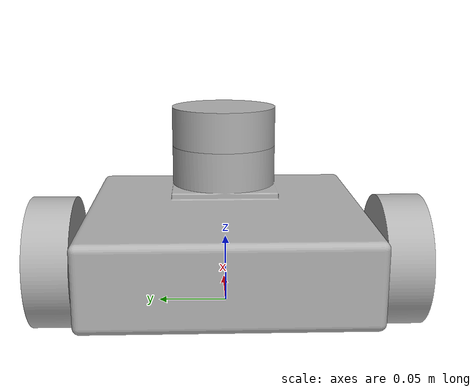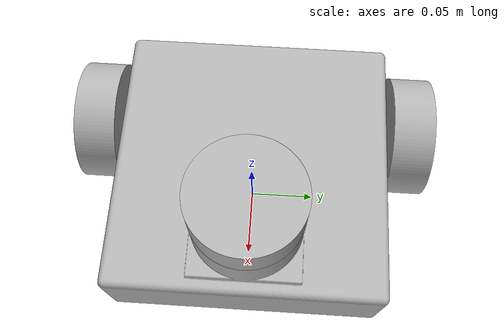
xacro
<?xml version="1.0" ?>
<robot name="Ranger" xmlns:xacro="http://www.ros.org/wiki/xacro">

    <xacro:include filename="$(find ranger)/description/materials.xacro" />
    <xacro:include filename="$(find ranger)/description/control.xacro" />
    <xacro:include filename="$(find ranger)/description/gazebo.xacro" />
    <xacro:include filename="$(find ranger)/description/sensors.xacro" />
    <xacro:include filename="$(find ranger)/description/amr_core.xacro" />

</robot>

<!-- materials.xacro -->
<robot name="Diff_drive_robot" xmlns:xacro="http://www.ros.org/wiki/xacro" >

  <material name="silver">
    <color rgba="0.700 0.700 0.700 1.000"/>
  </material>

</robot>

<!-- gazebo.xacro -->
<robot name="Diff_drive_robot" xmlns:xacro="http://www.ros.org/wiki/xacro" >

<xacro:property name="body_color" value="Gazebo/Silver" />

  <gazebo reference="base_link">
    <material>${body_color}</material>
    <mu1>0.2</mu1>
    <mu2>0.2</mu2>
    <selfCollide>true</selfCollide>
    <gravity>true</gravity>
  </gazebo>

  <gazebo reference="left_wheel_1">
    <material>${body_color}</material>
    <mu1>2.0</mu1>
    <mu2>2.0</mu2>
    <kp>1000000.0</kp>
    <kd>100.0</kd>
    <selfCollide>true</selfCollide>
  </gazebo>

  <gazebo reference="right_wheel_1">
    <material>${body_color}</material>
    <mu1>2.0</mu1>
    <mu2>2.0</mu2>
    <kp>1000000.0</kp>
    <kd>100.0</kd>
    <selfCollide>true</selfCollide>
  </gazebo>

  <gazebo reference="lidar_link_1">
    <material>${body_color}</material>
    <mu1>0.2</mu1>
    <mu2>0.2</mu2>
    <selfCollide>true</selfCollide>
  </gazebo>

  <gazebo reference="castor_wheel_link_1">
    <material>${body_color}</material>
    <mu1>0.0</mu1>
    <mu2>0.0</mu2>
    <selfCollide>true</selfCollide>
  </gazebo>

</robot>

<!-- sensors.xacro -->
<robot name="Ranger" xmlns:xacro="http://www.ros.org/wiki/xacro">

    <link name="lidar_link_1">
        <inertial>
            <origin xyz="0.0 0.0 0.015000000000000027" rpy="0 0 0"/>
            <mass value="1.183752111872634"/>
            <inertia ixx="0.000562" iyy="0.000562" izz="0.000947" ixy="-0.0" iyz="0.0" ixz="0.0"/>
        </inertial>
        <visual>
            <origin xyz="-0.05 -0.0 -0.11" rpy="0 0 0"/>
            <geometry>
            <mesh filename="package://ranger/meshes/lidar_link_1.stl" scale="0.001 0.001 0.001"/>
            </geometry>
            <material name="silver"/>
        </visual>
        <collision>
            <origin xyz="-0.05 -0.0 -0.11" rpy="0 0 0"/>
            <geometry>
            <mesh filename="package://ranger/meshes/lidar_link_1.stl" scale="0.001 0.001 0.001"/>
            </geometry>
        </collision>
    </link>

    <link name="imu_link">
        <inertial>
            <mass value="0.001"/>
            <inertia ixx="0.00001" ixy="0" ixz="0"
                    iyy="0.00001" iyz="0"
                    izz="0.00001"/>
        </inertial>
    </link>

     <joint name="Rigid 4" type="fixed">
        <origin xyz="0.05 0.0 0.11" rpy="0 0 0"/>
        <parent link="base_link"/>
        <child link="lidar_link_1"/>
    </joint>

    <joint name="imu_joint" type="fixed">
        <parent link="base_link"/>
        <child link="imu_link"/>
        <origin xyz="0.0 0.0 0.05" rpy="0 0 0"/>
    </joint>

    <gazebo reference="lidar_link_1">
        <sensor name="lidar" type="gpu_lidar">
        <topic>/scan</topic>
        <update_rate>5</update_rate>
        <gz_frame_id>lidar_link_1</gz_frame_id>
        <ray>
            <scan>
            <horizontal>
                <samples>360</samples>
                <resolution>1</resolution>
                <min_angle>-3.14159</min_angle>
                <max_angle>3.14159</max_angle>
            </horizontal>
            </scan>
            <range>
            <min>0.35</min>
            <max>10.0</max>
            <resolution>0.01</resolution>
            </range>
            <noise>
            <type>gaussian</type>
            <mean>0.0</mean>
            <stddev>0.005</stddev>
            </noise>
        </ray>
        <always_on>true</always_on>
        <visualize>true</visualize>
        </sensor>
    </gazebo>

    <gazebo reference="base_link">
        <sensor name="imu_sensor" type="imu">
        <topic>/imu</topic>
        <update_rate>100</update_rate>
        <gz_frame_id>base_link</gz_frame_id>
        <imu>
            <angular_velocity>
            <x>
                <noise type="gaussian">
                <mean>0.0</mean>
                <stddev>0.009</stddev>
                </noise>
            </x>
            <y>
                <noise type="gaussian">
                <mean>0.0</mean>
                <stddev>0.009</stddev>
                </noise>
            </y>
            <z>
                <noise type="gaussian">
                <mean>0.0</mean>
                <stddev>0.009</stddev>
                </noise>
            </z>
            </angular_velocity>
            <linear_acceleration>
            <x>
                <noise type="gaussian">
                <mean>0.0</mean>
                <stddev>0.021</stddev>
                </noise>
            </x>
            <y>
                <noise type="gaussian">
                <mean>0.0</mean>
                <stddev>0.021</stddev>
                </noise>
            </y>
            <z>
                <noise type="gaussian">
                <mean>0.0</mean>
                <stddev>0.021</stddev>
                </noise>
            </z>
            </linear_acceleration>
        </imu>
        <always_on>true</always_on>
        <visualize>false</visualize>
        </sensor>
    </gazebo>

    <gazebo>
        <plugin filename="ignition-gazebo-sensors-system"
                name="ignition::gazebo::systems::Sensors">
        <render_engine>ogre</render_engine>
        </plugin>
    </gazebo>

    <gazebo>
        <plugin filename="ignition-gazebo-imu-system"
            name="ignition::gazebo::systems::Imu"/>
    </gazebo>

</robot>

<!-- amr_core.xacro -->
<robot name="Ranger" xmlns:xacro="http://www.ros.org/wiki/xacro">

    <link name="base_link">
        <inertial>
            <origin xyz="0.0035546665659326455 -1.413441635704636e-17 0.048329276632124316" rpy="0 0 0"/>
            <mass value="20.204678363979987"/>
            <inertia ixx="0.071598" iyy="0.074917" izz="0.129142" ixy="0.0" iyz="-0.0" ixz="-0.003123"/>
        </inertial>
        <visual>
            <origin xyz="0 0 0" rpy="0 0 0"/>
            <geometry>
            <mesh filename="package://ranger/meshes/base_link.stl" scale="0.001 0.001 0.001"/>
            </geometry>
            <material name="silver"/>
        </visual>
        <collision>
            <origin xyz="0 0 0" rpy="0 0 0"/>
            <geometry>
            <mesh filename="package://ranger/meshes/base_link.stl" scale="0.001 0.001 0.001"/>
            </geometry>
        </collision>
    </link>

    <link name="right_wheel_link_1">
        <inertial>
            <origin xyz="-5.842548667089886e-15 -0.015000000000000027 2.8171909249863347e-15" rpy="0 0 0"/>
            <mass value="1.4796901398407913"/>
            <inertia ixx="0.000869" iyy="0.001517" izz="0.000869" ixy="0.0" iyz="-0.0" ixz="-0.0"/>
        </inertial>
        <visual>
            <origin xyz="0.04 0.1025 -0.045" rpy="0 0 0"/>
            <geometry>
            <mesh filename="package://ranger/meshes/right_wheel_link_1.stl" scale="0.001 0.001 0.001"/>
            </geometry>
            <material name="silver"/>
        </visual>
        <collision>
            <origin xyz="0.04 0.1025 -0.045" rpy="0 0 0"/>
            <geometry>
            <mesh filename="package://ranger/meshes/right_wheel_link_1.stl" scale="0.001 0.001 0.001"/>
            </geometry>
        </collision>
    </link>

    <link name="left_wheel_link_1">
        <inertial>
            <origin xyz="8.326672684688674e-16 0.015000000000000027 -6.168676680573526e-15" rpy="0 0 0"/>
            <mass value="1.4796901398407913"/>
            <inertia ixx="0.000869" iyy="0.001517" izz="0.000869" ixy="-0.0" iyz="0.0" ixz="-0.0"/>
        </inertial>
        <visual>
            <origin xyz="0.04 -0.1025 -0.045" rpy="0 0 0"/>
            <geometry>
            <mesh filename="package://ranger/meshes/left_wheel_link_1.stl" scale="0.001 0.001 0.001"/>
            </geometry>
            <material name="silver"/>
        </visual>
        <collision>
            <origin xyz="0.04 -0.1025 -0.045" rpy="0 0 0"/>
            <geometry>
            <mesh filename="package://ranger/meshes/left_wheel_link_1.stl" scale="0.001 0.001 0.001"/>
            </geometry>
        </collision>
    </link>

    <link name="castor_wheel_link_1">
        <inertial>
            <origin xyz="0.0 -5.2835126755093754e-18 -0.0054087491770349536" rpy="0 0 0"/>
            <mass value="0.05278458497479655"/>
            <inertia ixx="3e-06" iyy="3e-06" izz="5e-06" ixy="-0.0" iyz="-0.0" ixz="0.0"/>
        </inertial>
        <visual>
            <origin xyz="-0.07 -0.0 -0.0145" rpy="0 0 0"/>
            <geometry>
            <mesh filename="package://ranger/meshes/castor_wheel_link_1.stl" scale="0.001 0.001 0.001"/>
            </geometry>
            <material name="silver"/>
        </visual>
        <collision>
            <origin xyz="-0.07 -0.0 -0.0145" rpy="0 0 0"/>
            <geometry>
            <mesh filename="package://ranger/meshes/castor_wheel_link_1.stl" scale="0.001 0.001 0.001"/>
            </geometry>
        </collision>
    </link>

    <joint name="right_wheel_joint" type="continuous">
        <origin xyz="-0.04 -0.1025 0.045" rpy="0 0 0"/>
        <parent link="base_link"/>
        <child link="right_wheel_link_1"/>
        <axis xyz="0.0 1.0 0.0"/>
    </joint>

    <joint name="left_wheel_joint" type="continuous">
        <origin xyz="-0.04 0.1025 0.045" rpy="0 0 0"/>
        <parent link="base_link"/>
        <child link="left_wheel_link_1"/>
        <axis xyz="0.0 1.0 0.0"/>
    </joint>

    <joint name="castor_wheel_joint" type="fixed">
        <origin xyz="0.07 0.0 0.0145" rpy="0 0 0"/>
        <parent link="base_link"/>
        <child link="castor_wheel_link_1"/>
    </joint>

</robot>
